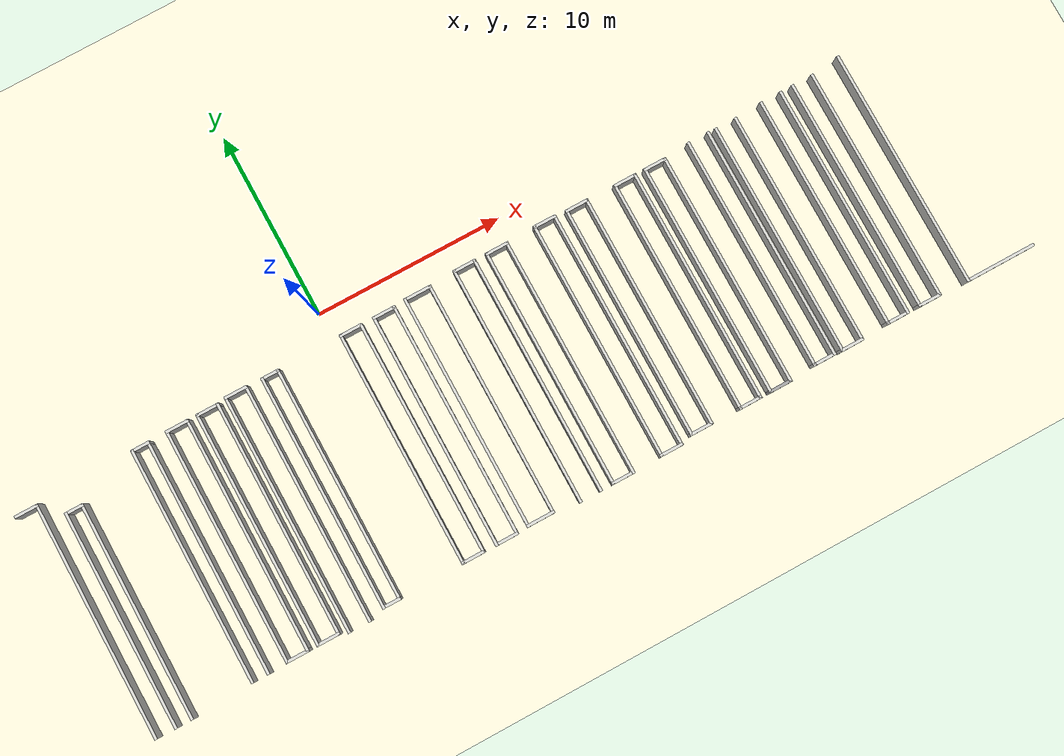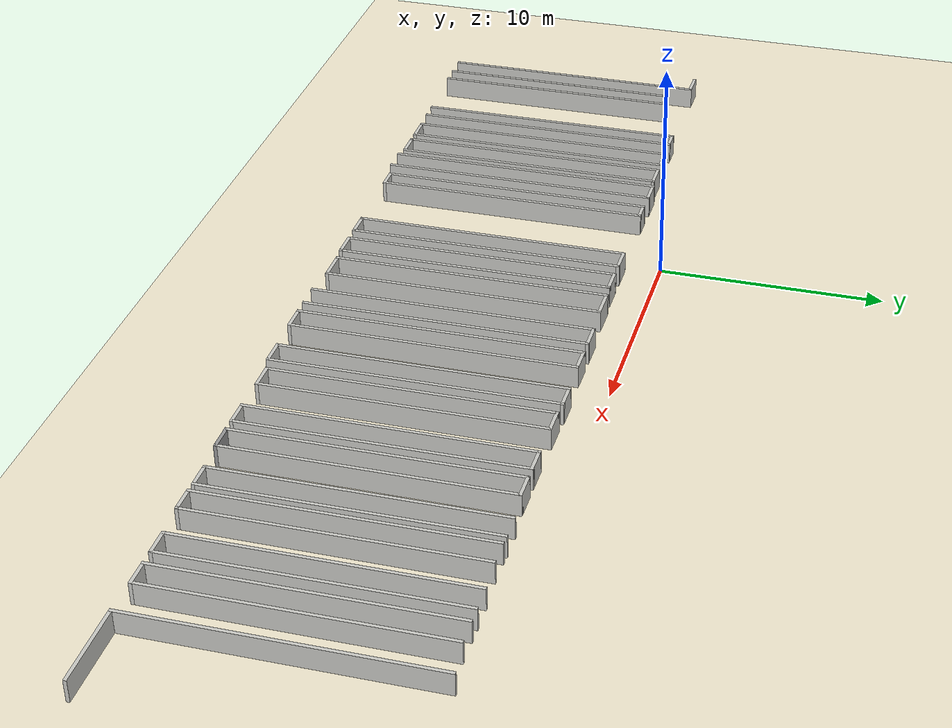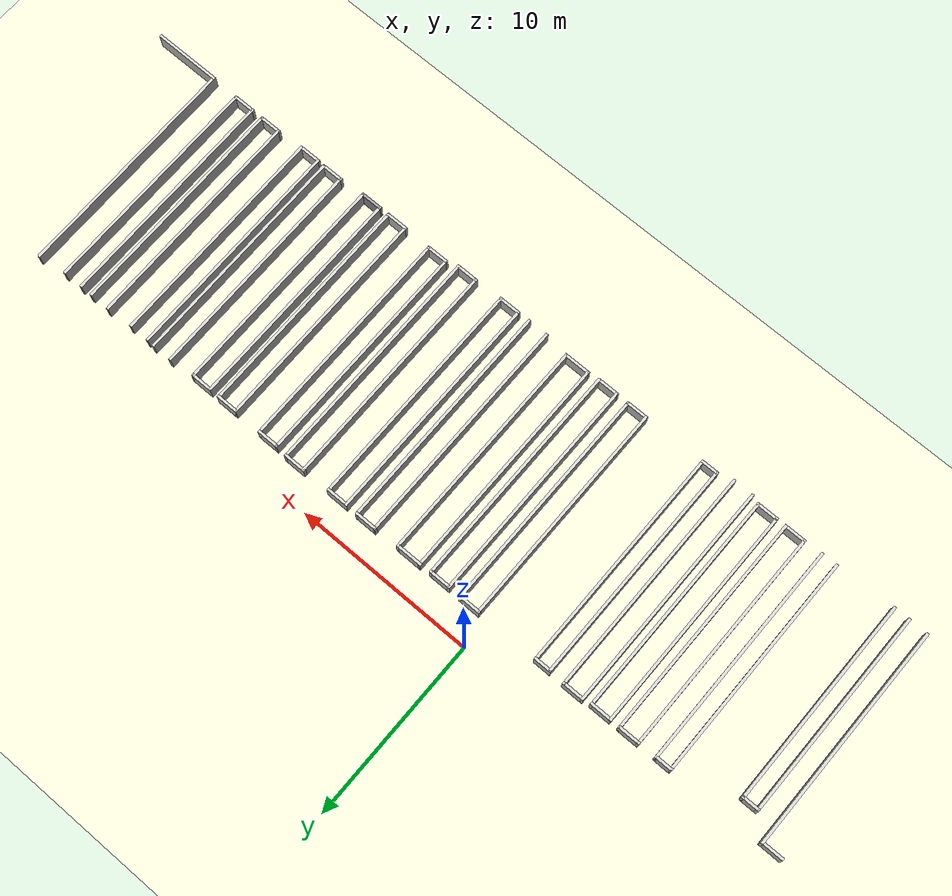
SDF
<sdf version="1.7">
 <world name="default">
  <model name="ground_plane">
   <static>1</static>
   <link name="link">
    <collision name="collision">
     <geometry><plane><normal>0 0 1</normal><size>100 100</size></plane></geometry>
     <surface><friction><ode><mu>100</mu><mu2>50</mu2></ode></friction></surface>
    </collision>
    <visual name="visual">
     <cast_shadows>0</cast_shadows>
     <geometry><plane><normal>0 0 1</normal><size>100 100</size></plane></geometry>
     <material>
      <ambient>0.85 0.82 0.72 1</ambient>
      <diffuse>0.95 0.92 0.82 1</diffuse>
      <specular>0.05 0.05 0.05 1</specular>
     </material>
    </visual>
   </link>
  </model>
  <model name="warehouse">
   <pose>0.004046 2.00696 0 0 -0 0</pose>
   <link name="Wall_68">
    <collision name="Wall_68_Collision">
     <geometry><box><size>12.75 0.15 1</size></box></geometry>
     <pose>0 0 0.5 0 -0 0</pose>
    </collision>
    <visual name="Wall_68_Visual">
     <pose>0 0 0.5 0 -0 0</pose>
     <geometry><box><size>12.75 0.15 1</size></box></geometry>
     <material>
      <script><uri>file://media/materials/scripts/gazebo.material</uri><name>Gazebo/CeilingTiled</name></script>
      <ambient>1 1 1 1</ambient>
     </material>
     <meta><layer>0</layer></meta>
    </visual>
    <pose>28.328 -9.4365 0 0 -0 -1.5708</pose>
   </link>
   <link name="Wall_69">
    <collision name="Wall_69_Collision">
     <geometry><box><size>3.75 0.15 1</size></box></geometry>
     <pose>0 0 0.5 0 -0 0</pose>
    </collision>
    <visual name="Wall_69_Visual">
     <pose>0 0 0.5 0 -0 0</pose>
     <geometry><box><size>3.75 0.15 1</size></box></geometry>
     <material>
      <script><uri>file://media/materials/scripts/gazebo.material</uri><name>Gazebo/CeilingTiled</name></script>
      <ambient>1 1 1 1</ambient>
     </material>
     <meta><layer>0</layer></meta>
    </visual>
    <pose>30.128 -15.7365 0 0 -0 0</pose>
   </link>
   <link name="Wall_704">
    <collision name="Wall_704_Collision">
     <geometry><box><size>1 0.15 1</size></box></geometry>
     <pose>0 0 0.5 0 -0 0</pose>
    </collision>
    <visual name="Wall_704_Visual">
     <pose>0 0 0.5 0 -0 0</pose>
     <geometry><box><size>1 0.15 1</size></box></geometry>
     <material>
      <script><uri>file://media/materials/scripts/gazebo.material</uri><name>Gazebo/CeilingTiled</name></script>
      <ambient>1 1 1 1</ambient>
     </material>
     <meta><layer>0</layer></meta>
    </visual>
    <pose>-10.4 -3.7525 0 0 -0 0</pose>
   </link>
   <link name="Wall_705">
    <collision name="Wall_705_Collision">
     <geometry><box><size>12.5 0.15 1</size></box></geometry>
     <pose>0 0 0.5 0 -0 0</pose>
    </collision>
    <visual name="Wall_705_Visual">
     <pose>0 0 0.5 0 -0 0</pose>
     <geometry><box><size>12.5 0.15 1</size></box></geometry>
     <material>
      <script><uri>file://media/materials/scripts/gazebo.material</uri><name>Gazebo/CeilingTiled</name></script>
      <ambient>1 1 1 1</ambient>
     </material>
     <meta><layer>0</layer></meta>
    </visual>
    <pose>-9.97504 -9.9275 0 0 -0 -1.5708</pose>
   </link>
   <link name="Wall_707">
    <collision name="Wall_707_Collision">
     <geometry><box><size>12.5 0.15 1</size></box></geometry>
     <pose>0 0 0.5 0 -0 0</pose>
    </collision>
    <visual name="Wall_707_Visual">
     <pose>0 0 0.5 0 -0 0</pose>
     <geometry><box><size>12.5 0.15 1</size></box></geometry>
     <material>
      <script><uri>file://media/materials/scripts/gazebo.material</uri><name>Gazebo/CeilingTiled</name></script>
      <ambient>1 1 1 1</ambient>
     </material>
     <meta><layer>0</layer></meta>
    </visual>
    <pose>-10.825 -9.9275 0 0 -0 1.5708</pose>
   </link>
   <link name="Wall_709">
    <collision name="Wall_709_Collision">
     <geometry><box><size>1.25 0.15 1</size></box></geometry>
     <pose>0 0 0.5 0 -0 0</pose>
    </collision>
    <visual name="Wall_709_Visual">
     <pose>0 0 0.5 0 -0 0</pose>
     <geometry><box><size>1.25 0.15 1</size></box></geometry>
     <material>
      <script><uri>file://media/materials/scripts/gazebo.material</uri><name>Gazebo/CeilingTiled</name></script>
      <ambient>1 1 1 1</ambient>
     </material>
     <meta><layer>0</layer></meta>
    </visual>
    <pose>-8.40704 -3.7195 0 0 -0 0</pose>
   </link>
   <link name="Wall_710">
    <collision name="Wall_710_Collision">
     <geometry><box><size>12.5 0.15 1</size></box></geometry>
     <pose>0 0 0.5 0 -0 0</pose>
    </collision>
    <visual name="Wall_710_Visual">
     <pose>0 0 0.5 0 -0 0</pose>
     <geometry><box><size>12.5 0.15 1</size></box></geometry>
     <material>
      <script><uri>file://media/materials/scripts/gazebo.material</uri><name>Gazebo/CeilingTiled</name></script>
      <ambient>1 1 1 1</ambient>
     </material>
     <meta><layer>0</layer></meta>
    </visual>
    <pose>-7.85704 -9.8945 0 0 -0 -1.5708</pose>
   </link>
   <link name="Wall_711">
    <collision name="Wall_711_Collision">
     <geometry><box><size>1.25 0.15 1</size></box></geometry>
     <pose>0 0 0.5 0 -0 0</pose>
    </collision>
    <visual name="Wall_711_Visual">
     <pose>0 0 0.5 0 -0 0</pose>
     <geometry><box><size>1.25 0.15 1</size></box></geometry>
     <material>
      <script><uri>file://media/materials/scripts/gazebo.material</uri><name>Gazebo/CeilingTiled</name></script>
      <ambient>1 1 1 1</ambient>
     </material>
     <meta><layer>0</layer></meta>
    </visual>
    <pose>-8.40704 -16.0695 0 0 -0 3.14159</pose>
   </link>
   <link name="Wall_712">
    <collision name="Wall_712_Collision">
     <geometry><box><size>12.5 0.15 1</size></box></geometry>
     <pose>0 0 0.5 0 -0 0</pose>
    </collision>
    <visual name="Wall_712_Visual">
     <pose>0 0 0.5 0 -0 0</pose>
     <geometry><box><size>12.5 0.15 1</size></box></geometry>
     <material>
      <script><uri>file://media/materials/scripts/gazebo.material</uri><name>Gazebo/CeilingTiled</name></script>
      <ambient>1 1 1 1</ambient>
     </material>
     <meta><layer>0</layer></meta>
    </visual>
    <pose>-8.95704 -9.8945 0 0 -0 1.5708</pose>
   </link>
   <link name="Wall_714">
    <collision name="Wall_714_Collision">
     <geometry><box><size>12.5 0.15 1</size></box></geometry>
     <pose>0 0 0.5 0 -0 0</pose>
    </collision>
    <visual name="Wall_714_Visual">
     <pose>0 0 0.5 0 -0 0</pose>
     <geometry><box><size>12.5 0.15 1</size></box></geometry>
     <material>
      <script><uri>file://media/materials/scripts/gazebo.material</uri><name>Gazebo/CeilingTiled</name></script>
      <ambient>1 1 1 1</ambient>
     </material>
     <meta><layer>0</layer></meta>
    </visual>
    <pose>-7.31904 -9.8945 0 0 -0 -1.5708</pose>
   </link>
   <link name="Wall_715">
    <collision name="Wall_715_Collision">
     <geometry><box><size>1.25 0.15 1</size></box></geometry>
     <pose>0 0 0.5 0 -0 0</pose>
    </collision>
    <visual name="Wall_715_Visual">
     <pose>0 0 0.5 0 -0 0</pose>
     <geometry><box><size>1.25 0.15 1</size></box></geometry>
     <material>
      <script><uri>file://media/materials/scripts/gazebo.material</uri><name>Gazebo/CeilingTiled</name></script>
      <ambient>1 1 1 1</ambient>
     </material>
     <meta><layer>0</layer></meta>
    </visual>
    <pose>-6.76904 -16.0695 0 0 -0 0</pose>
   </link>
   <link name="Wall_716">
    <collision name="Wall_716_Collision">
     <geometry><box><size>12.5 0.15 1</size></box></geometry>
     <pose>0 0 0.5 0 -0 0</pose>
    </collision>
    <visual name="Wall_716_Visual">
     <pose>0 0 0.5 0 -0 0</pose>
     <geometry><box><size>12.5 0.15 1</size></box></geometry>
     <material>
      <script><uri>file://media/materials/scripts/gazebo.material</uri><name>Gazebo/CeilingTiled</name></script>
      <ambient>1 1 1 1</ambient>
     </material>
     <meta><layer>0</layer></meta>
    </visual>
    <pose>-6.21904 -9.8945 0 0 -0 1.5708</pose>
   </link>
   <link name="Wall_717">
    <collision name="Wall_717_Collision">
     <geometry><box><size>1.25 0.15 1</size></box></geometry>
     <pose>0 0 0.5 0 -0 0</pose>
    </collision>
    <visual name="Wall_717_Visual">
     <pose>0 0 0.5 0 -0 0</pose>
     <geometry><box><size>1.25 0.15 1</size></box></geometry>
     <material>
      <script><uri>file://media/materials/scripts/gazebo.material</uri><name>Gazebo/CeilingTiled</name></script>
      <ambient>1 1 1 1</ambient>
     </material>
     <meta><layer>0</layer></meta>
    </visual>
    <pose>-6.76904 -3.7195 0 0 -0 3.14159</pose>
   </link>
   <link name="Wall_719">
    <collision name="Wall_719_Collision">
     <geometry><box><size>1.25 0.15 1</size></box></geometry>
     <pose>0 0 0.5 0 -0 0</pose>
    </collision>
    <visual name="Wall_719_Visual">
     <pose>0 0 0.5 0 -0 0</pose>
     <geometry><box><size>1.25 0.15 1</size></box></geometry>
     <material>
      <script><uri>file://media/materials/scripts/gazebo.material</uri><name>Gazebo/CeilingTiled</name></script>
      <ambient>1 1 1 1</ambient>
     </material>
     <meta><layer>0</layer></meta>
    </visual>
    <pose>-5.19704 -3.6215 0 0 -0 0</pose>
   </link>
   <link name="Wall_720">
    <collision name="Wall_720_Collision">
     <geometry><box><size>12.75 0.15 1</size></box></geometry>
     <pose>0 0 0.5 0 -0 0</pose>
    </collision>
    <visual name="Wall_720_Visual">
     <pose>0 0 0.5 0 -0 0</pose>
     <geometry><box><size>12.75 0.15 1</size></box></geometry>
     <material>
      <script><uri>file://media/materials/scripts/gazebo.material</uri><name>Gazebo/CeilingTiled</name></script>
      <ambient>1 1 1 1</ambient>
     </material>
     <meta><layer>0</layer></meta>
    </visual>
    <pose>-4.64704 -9.9215 0 0 -0 -1.5708</pose>
   </link>
   <link name="Wall_722">
    <collision name="Wall_722_Collision">
     <geometry><box><size>12.75 0.15 1</size></box></geometry>
     <pose>0 0 0.5 0 -0 0</pose>
    </collision>
    <visual name="Wall_722_Visual">
     <pose>0 0 0.5 0 -0 0</pose>
     <geometry><box><size>12.75 0.15 1</size></box></geometry>
     <material>
      <script><uri>file://media/materials/scripts/gazebo.material</uri><name>Gazebo/CeilingTiled</name></script>
      <ambient>1 1 1 1</ambient>
     </material>
     <meta><layer>0</layer></meta>
    </visual>
    <pose>-5.74704 -9.9215 0 0 -0 1.5708</pose>
   </link>
   <link name="Wall_724">
    <collision name="Wall_724_Collision">
     <geometry><box><size>1 0.15 1</size></box></geometry>
     <pose>0 0 0.5 0 -0 0</pose>
    </collision>
    <visual name="Wall_724_Visual">
     <pose>0 0 0.5 0 -0 0</pose>
     <geometry><box><size>1 0.15 1</size></box></geometry>
     <material>
      <script><uri>file://media/materials/scripts/gazebo.material</uri><name>Gazebo/CeilingTiled</name></script>
      <ambient>1 1 1 1</ambient>
     </material>
     <meta><layer>0</layer></meta>
    </visual>
    <pose>-3.35604 -3.6535 0 0 -0 0</pose>
   </link>
   <link name="Wall_725">
    <collision name="Wall_725_Collision">
     <geometry><box><size>12.5 0.15 1</size></box></geometry>
     <pose>0 0 0.5 0 -0 0</pose>
    </collision>
    <visual name="Wall_725_Visual">
     <pose>0 0 0.5 0 -0 0</pose>
     <geometry><box><size>12.5 0.15 1</size></box></geometry>
     <material>
      <script><uri>file://media/materials/scripts/gazebo.material</uri><name>Gazebo/CeilingTiled</name></script>
      <ambient>1 1 1 1</ambient>
     </material>
     <meta><layer>0</layer></meta>
    </visual>
    <pose>-2.93104 -9.8285 0 0 -0 -1.5708</pose>
   </link>
   <link name="Wall_726">
    <collision name="Wall_726_Collision">
     <geometry><box><size>1 0.15 1</size></box></geometry>
     <pose>0 0 0.5 0 -0 0</pose>
    </collision>
    <visual name="Wall_726_Visual">
     <pose>0 0 0.5 0 -0 0</pose>
     <geometry><box><size>1 0.15 1</size></box></geometry>
     <material>
      <script><uri>file://media/materials/scripts/gazebo.material</uri><name>Gazebo/CeilingTiled</name></script>
      <ambient>1 1 1 1</ambient>
     </material>
     <meta><layer>0</layer></meta>
    </visual>
    <pose>-3.35604 -16.0035 0 0 -0 3.14159</pose>
   </link>
   <link name="Wall_727">
    <collision name="Wall_727_Collision">
     <geometry><box><size>12.5 0.15 1</size></box></geometry>
     <pose>0 0 0.5 0 -0 0</pose>
    </collision>
    <visual name="Wall_727_Visual">
     <pose>0 0 0.5 0 -0 0</pose>
     <geometry><box><size>12.5 0.15 1</size></box></geometry>
     <material>
      <script><uri>file://media/materials/scripts/gazebo.material</uri><name>Gazebo/CeilingTiled</name></script>
      <ambient>1 1 1 1</ambient>
     </material>
     <meta><layer>0</layer></meta>
    </visual>
    <pose>-3.78104 -9.8285 0 0 -0 1.5708</pose>
   </link>
   <link name="Wall_729">
    <collision name="Wall_729_Collision">
     <geometry><box><size>1.25 0.15 1</size></box></geometry>
     <pose>0 0 0.5 0 -0 0</pose>
    </collision>
    <visual name="Wall_729_Visual">
     <pose>0 0 0.5 0 -0 0</pose>
     <geometry><box><size>1.25 0.15 1</size></box></geometry>
     <material>
      <script><uri>file://media/materials/scripts/gazebo.material</uri><name>Gazebo/CeilingTiled</name></script>
      <ambient>1 1 1 1</ambient>
     </material>
     <meta><layer>0</layer></meta>
    </visual>
    <pose>-16.533 -3.8835 0 0 -0 0</pose>
   </link>
   <link name="Wall_730">
    <collision name="Wall_730_Collision">
     <geometry><box><size>12.5 0.15 1</size></box></geometry>
     <pose>0 0 0.5 0 -0 0</pose>
    </collision>
    <visual name="Wall_730_Visual">
     <pose>0 0 0.5 0 -0 0</pose>
     <geometry><box><size>12.5 0.15 1</size></box></geometry>
     <material>
      <script><uri>file://media/materials/scripts/gazebo.material</uri><name>Gazebo/CeilingTiled</name></script>
      <ambient>1 1 1 1</ambient>
     </material>
     <meta><layer>0</layer></meta>
    </visual>
    <pose>-15.983 -10.0585 0 0 -0 -1.5708</pose>
   </link>
   <link name="Wall_737">
    <collision name="Wall_737_Collision">
     <geometry><box><size>11.5 0.15 1</size></box></geometry>
     <pose>0 0 0.5 0 -0 0</pose>
    </collision>
    <visual name="Wall_737_Visual">
     <pose>0 0 0.5 0 -0 0</pose>
     <geometry><box><size>11.5 0.15 1</size></box></geometry>
     <material>
      <script><uri>file://media/materials/scripts/gazebo.material</uri><name>Gazebo/CeilingTiled</name></script>
      <ambient>1 1 1 1</ambient>
     </material>
     <meta><layer>0</layer></meta>
    </visual>
    <pose>-14.088 -10.5715 0 0 -0 -1.5708</pose>
   </link>
   <link name="Wall_739">
    <collision name="Wall_739_Collision">
     <geometry><box><size>11.5 0.15 1</size></box></geometry>
     <pose>0 0 0.5 0 -0 0</pose>
    </collision>
    <visual name="Wall_739_Visual">
     <pose>0 0 0.5 0 -0 0</pose>
     <geometry><box><size>11.5 0.15 1</size></box></geometry>
     <material>
      <script><uri>file://media/materials/scripts/gazebo.material</uri><name>Gazebo/CeilingTiled</name></script>
      <ambient>1 1 1 1</ambient>
     </material>
     <meta><layer>0</layer></meta>
    </visual>
    <pose>-14.938 -10.5715 0 0 -0 1.5708</pose>
   </link>
   <link name="Wall_740">
    <collision name="Wall_740_Collision">
     <geometry><box><size>1 0.15 1</size></box></geometry>
     <pose>0 0 0.5 0 -0 0</pose>
    </collision>
    <visual name="Wall_740_Visual">
     <pose>0 0 0.5 0 -0 0</pose>
     <geometry><box><size>1 0.15 1</size></box></geometry>
     <material>
      <script><uri>file://media/materials/scripts/gazebo.material</uri><name>Gazebo/CeilingTiled</name></script>
      <ambient>1 1 1 1</ambient>
     </material>
     <meta><layer>0</layer></meta>
    </visual>
    <pose>-14.513 -4.8965 0 0 -0 0</pose>
   </link>
   <link name="Wall_755">
    <collision name="Wall_755_Collision">
     <geometry><box><size>12.5 0.15 1</size></box></geometry>
     <pose>0 0 0.5 0 -0 0</pose>
    </collision>
    <visual name="Wall_755_Visual">
     <pose>0 0 0.5 0 -0 0</pose>
     <geometry><box><size>12.5 0.15 1</size></box></geometry>
     <material>
      <script><uri>file://media/materials/scripts/gazebo.material</uri><name>Gazebo/CeilingTiled</name></script>
      <ambient>1 1 1 1</ambient>
     </material>
     <meta><layer>0</layer></meta>
    </visual>
    <pose>0.498962 -9.7885 0 0 -0 -1.5708</pose>
   </link>
   <link name="Wall_756">
    <collision name="Wall_756_Collision">
     <geometry><box><size>1.25 0.15 1</size></box></geometry>
     <pose>0 0 0.5 0 -0 0</pose>
    </collision>
    <visual name="Wall_756_Visual">
     <pose>0 0 0.5 0 -0 0</pose>
     <geometry><box><size>1.25 0.15 1</size></box></geometry>
     <material>
      <script><uri>file://media/materials/scripts/gazebo.material</uri><name>Gazebo/CeilingTiled</name></script>
      <ambient>1 1 1 1</ambient>
     </material>
     <meta><layer>0</layer></meta>
    </visual>
    <pose>1.04896 -15.9635 0 0 -0 0</pose>
   </link>
   <link name="Wall_757">
    <collision name="Wall_757_Collision">
     <geometry><box><size>12.5 0.15 1</size></box></geometry>
     <pose>0 0 0.5 0 -0 0</pose>
    </collision>
    <visual name="Wall_757_Visual">
     <pose>0 0 0.5 0 -0 0</pose>
     <geometry><box><size>12.5 0.15 1</size></box></geometry>
     <material>
      <script><uri>file://media/materials/scripts/gazebo.material</uri><name>Gazebo/CeilingTiled</name></script>
      <ambient>1 1 1 1</ambient>
     </material>
     <meta><layer>0</layer></meta>
    </visual>
    <pose>1.59896 -9.7885 0 0 -0 1.5708</pose>
   </link>
   <link name="Wall_758">
    <collision name="Wall_758_Collision">
     <geometry><box><size>1.25 0.15 1</size></box></geometry>
     <pose>0 0 0.5 0 -0 0</pose>
    </collision>
    <visual name="Wall_758_Visual">
     <pose>0 0 0.5 0 -0 0</pose>
     <geometry><box><size>1.25 0.15 1</size></box></geometry>
     <material>
      <script><uri>file://media/materials/scripts/gazebo.material</uri><name>Gazebo/CeilingTiled</name></script>
      <ambient>1 1 1 1</ambient>
     </material>
     <meta><layer>0</layer></meta>
    </visual>
    <pose>1.04896 -3.6135 0 0 -0 3.14159</pose>
   </link>
   <link name="Wall_784">
    <collision name="Wall_784_Collision">
     <geometry><box><size>1.25 0.15 1</size></box></geometry>
     <pose>0 0 0.5 0 -0 0</pose>
    </collision>
    <visual name="Wall_784_Visual">
     <pose>0 0 0.5 0 -0 0</pose>
     <geometry><box><size>1.25 0.15 1</size></box></geometry>
     <material>
      <script><uri>file://media/materials/scripts/gazebo.material</uri><name>Gazebo/CeilingTiled</name></script>
      <ambient>1 1 1 1</ambient>
     </material>
     <meta><layer>0</layer></meta>
    </visual>
    <pose>2.85296 -3.6175 0 0 -0 0</pose>
   </link>
   <link name="Wall_785">
    <collision name="Wall_785_Collision">
     <geometry><box><size>12.5 0.15 1</size></box></geometry>
     <pose>0 0 0.5 0 -0 0</pose>
    </collision>
    <visual name="Wall_785_Visual">
     <pose>0 0 0.5 0 -0 0</pose>
     <geometry><box><size>12.5 0.15 1</size></box></geometry>
     <material>
      <script><uri>file://media/materials/scripts/gazebo.material</uri><name>Gazebo/CeilingTiled</name></script>
      <ambient>1 1 1 1</ambient>
     </material>
     <meta><layer>0</layer></meta>
    </visual>
    <pose>3.40296 -9.7925 0 0 -0 -1.5708</pose>
   </link>
   <link name="Wall_786">
    <collision name="Wall_786_Collision">
     <geometry><box><size>1.25 0.15 1</size></box></geometry>
     <pose>0 0 0.5 0 -0 0</pose>
    </collision>
    <visual name="Wall_786_Visual">
     <pose>0 0 0.5 0 -0 0</pose>
     <geometry><box><size>1.25 0.15 1</size></box></geometry>
     <material>
      <script><uri>file://media/materials/scripts/gazebo.material</uri><name>Gazebo/CeilingTiled</name></script>
      <ambient>1 1 1 1</ambient>
     </material>
     <meta><layer>0</layer></meta>
    </visual>
    <pose>2.85296 -15.9675 0 0 -0 3.14159</pose>
   </link>
   <link name="Wall_787">
    <collision name="Wall_787_Collision">
     <geometry><box><size>12.5 0.15 1</size></box></geometry>
     <pose>0 0 0.5 0 -0 0</pose>
    </collision>
    <visual name="Wall_787_Visual">
     <pose>0 0 0.5 0 -0 0</pose>
     <geometry><box><size>12.5 0.15 1</size></box></geometry>
     <material>
      <script><uri>file://media/materials/scripts/gazebo.material</uri><name>Gazebo/CeilingTiled</name></script>
      <ambient>1 1 1 1</ambient>
     </material>
     <meta><layer>0</layer></meta>
    </visual>
    <pose>2.30296 -9.7925 0 0 -0 1.5708</pose>
   </link>
   <link name="Wall_793">
    <collision name="Wall_793_Collision">
     <geometry><box><size>1.5 0.15 1</size></box></geometry>
     <pose>0 0 0.5 0 -0 0</pose>
    </collision>
    <visual name="Wall_793_Visual">
     <pose>0 0 0.5 0 -0 0</pose>
     <geometry><box><size>1.5 0.15 1</size></box></geometry>
     <material>
      <script><uri>file://media/materials/scripts/gazebo.material</uri><name>Gazebo/CeilingTiled</name></script>
      <ambient>1 1 1 1</ambient>
     </material>
     <meta><layer>0</layer></meta>
    </visual>
    <pose>4.71396 -3.5565 0 0 -0 0</pose>
   </link>
   <link name="Wall_794">
    <collision name="Wall_794_Collision">
     <geometry><box><size>12.5 0.15 1</size></box></geometry>
     <pose>0 0 0.5 0 -0 0</pose>
    </collision>
    <visual name="Wall_794_Visual">
     <pose>0 0 0.5 0 -0 0</pose>
     <geometry><box><size>12.5 0.15 1</size></box></geometry>
     <material>
      <script><uri>file://media/materials/scripts/gazebo.material</uri><name>Gazebo/CeilingTiled</name></script>
      <ambient>1 1 1 1</ambient>
     </material>
     <meta><layer>0</layer></meta>
    </visual>
    <pose>5.38896 -9.7315 0 0 -0 -1.5708</pose>
   </link>
   <link name="Wall_800">
    <collision name="Wall_800_Collision">
     <geometry><box><size>1.5 0.15 1</size></box></geometry>
     <pose>0 0 0.5 0 -0 0</pose>
    </collision>
    <visual name="Wall_800_Visual">
     <pose>0 0 0.5 0 -0 0</pose>
     <geometry><box><size>1.5 0.15 1</size></box></geometry>
     <material>
      <script><uri>file://media/materials/scripts/gazebo.material</uri><name>Gazebo/CeilingTiled</name></script>
      <ambient>1 1 1 1</ambient>
     </material>
     <meta><layer>0</layer></meta>
    </visual>
    <pose>4.71396 -15.9065 0 0 -0 3.14159</pose>
   </link>
   <link name="Wall_801">
    <collision name="Wall_801_Collision">
     <geometry><box><size>12.5 0.15 1</size></box></geometry>
     <pose>0 0 0.5 0 -0 0</pose>
    </collision>
    <visual name="Wall_801_Visual">
     <pose>0 0 0.5 0 -0 0</pose>
     <geometry><box><size>12.5 0.15 1</size></box></geometry>
     <material>
      <script><uri>file://media/materials/scripts/gazebo.material</uri><name>Gazebo/CeilingTiled</name></script>
      <ambient>1 1 1 1</ambient>
     </material>
     <meta><layer>0</layer></meta>
    </visual>
    <pose>4.03896 -9.7315 0 0 -0 1.5708</pose>
   </link>
   <link name="Wall_803">
    <collision name="Wall_803_Collision">
     <geometry><box><size>12.75 0.15 1</size></box></geometry>
     <pose>0 0 0.5 0 -0 0</pose>
    </collision>
    <visual name="Wall_803_Visual">
     <pose>0 0 0.5 0 -0 0</pose>
     <geometry><box><size>12.75 0.15 1</size></box></geometry>
     <material>
      <script><uri>file://media/materials/scripts/gazebo.material</uri><name>Gazebo/CeilingTiled</name></script>
      <ambient>1 1 1 1</ambient>
     </material>
     <meta><layer>0</layer></meta>
    </visual>
    <pose>6.78296 -9.7735 0 0 -0 -1.5708</pose>
   </link>
   <link name="Wall_807">
    <collision name="Wall_807_Collision">
     <geometry><box><size>12.75 0.15 1</size></box></geometry>
     <pose>0 0 0.5 0 -0 0</pose>
    </collision>
    <visual name="Wall_807_Visual">
     <pose>0 0 0.5 0 -0 0</pose>
     <geometry><box><size>12.75 0.15 1</size></box></geometry>
     <material>
      <script><uri>file://media/materials/scripts/gazebo.material</uri><name>Gazebo/CeilingTiled</name></script>
      <ambient>1 1 1 1</ambient>
     </material>
     <meta><layer>0</layer></meta>
    </visual>
    <pose>7.88296 -9.7735 0 0 -0 1.5708</pose>
   </link>
   <link name="Wall_808">
    <collision name="Wall_808_Collision">
     <geometry><box><size>1.25 0.15 1</size></box></geometry>
     <pose>0 0 0.5 0 -0 0</pose>
    </collision>
    <visual name="Wall_808_Visual">
     <pose>0 0 0.5 0 -0 0</pose>
     <geometry><box><size>1.25 0.15 1</size></box></geometry>
     <material>
      <script><uri>file://media/materials/scripts/gazebo.material</uri><name>Gazebo/CeilingTiled</name></script>
      <ambient>1 1 1 1</ambient>
     </material>
     <meta><layer>0</layer></meta>
    </visual>
    <pose>7.33296 -3.4735 0 0 -0 3.14159</pose>
   </link>
   <link name="Wall_810">
    <collision name="Wall_810_Collision">
     <geometry><box><size>1.25 0.15 1</size></box></geometry>
     <pose>0 0 0.5 0 -0 0</pose>
    </collision>
    <visual name="Wall_810_Visual">
     <pose>0 0 0.5 0 -0 0</pose>
     <geometry><box><size>1.25 0.15 1</size></box></geometry>
     <material>
      <script><uri>file://media/materials/scripts/gazebo.material</uri><name>Gazebo/CeilingTiled</name></script>
      <ambient>1 1 1 1</ambient>
     </material>
     <meta><layer>0</layer></meta>
    </visual>
    <pose>9.10896 -3.4735 0 0 -0 0</pose>
   </link>
   <link name="Wall_811">
    <collision name="Wall_811_Collision">
     <geometry><box><size>12.75 0.15 1</size></box></geometry>
     <pose>0 0 0.5 0 -0 0</pose>
    </collision>
    <visual name="Wall_811_Visual">
     <pose>0 0 0.5 0 -0 0</pose>
     <geometry><box><size>12.75 0.15 1</size></box></geometry>
     <material>
      <script><uri>file://media/materials/scripts/gazebo.material</uri><name>Gazebo/CeilingTiled</name></script>
      <ambient>1 1 1 1</ambient>
     </material>
     <meta><layer>0</layer></meta>
    </visual>
    <pose>9.65896 -9.7735 0 0 -0 -1.5708</pose>
   </link>
   <link name="Wall_812">
    <collision name="Wall_812_Collision">
     <geometry><box><size>1.25 0.15 1</size></box></geometry>
     <pose>0 0 0.5 0 -0 0</pose>
    </collision>
    <visual name="Wall_812_Visual">
     <pose>0 0 0.5 0 -0 0</pose>
     <geometry><box><size>1.25 0.15 1</size></box></geometry>
     <material>
      <script><uri>file://media/materials/scripts/gazebo.material</uri><name>Gazebo/CeilingTiled</name></script>
      <ambient>1 1 1 1</ambient>
     </material>
     <meta><layer>0</layer></meta>
    </visual>
    <pose>9.10896 -16.0735 0 0 -0 3.14159</pose>
   </link>
   <link name="Wall_813">
    <collision name="Wall_813_Collision">
     <geometry><box><size>12.75 0.15 1</size></box></geometry>
     <pose>0 0 0.5 0 -0 0</pose>
    </collision>
    <visual name="Wall_813_Visual">
     <pose>0 0 0.5 0 -0 0</pose>
     <geometry><box><size>12.75 0.15 1</size></box></geometry>
     <material>
      <script><uri>file://media/materials/scripts/gazebo.material</uri><name>Gazebo/CeilingTiled</name></script>
      <ambient>1 1 1 1</ambient>
     </material>
     <meta><layer>0</layer></meta>
    </visual>
    <pose>8.55896 -9.7735 0 0 -0 1.5708</pose>
   </link>
   <link name="Wall_815">
    <collision name="Wall_815_Collision">
     <geometry><box><size>12.75 0.15 1</size></box></geometry>
     <pose>0 0 0.5 0 -0 0</pose>
    </collision>
    <visual name="Wall_815_Visual">
     <pose>0 0 0.5 0 -0 0</pose>
     <geometry><box><size>12.75 0.15 1</size></box></geometry>
     <material>
      <script><uri>file://media/materials/scripts/gazebo.material</uri><name>Gazebo/CeilingTiled</name></script>
      <ambient>1 1 1 1</ambient>
     </material>
     <meta><layer>0</layer></meta>
    </visual>
    <pose>11.224 -9.7155 0 0 -0 -1.5708</pose>
   </link>
   <link name="Wall_816">
    <collision name="Wall_816_Collision">
     <geometry><box><size>1.25 0.15 1</size></box></geometry>
     <pose>0 0 0.5 0 -0 0</pose>
    </collision>
    <visual name="Wall_816_Visual">
     <pose>0 0 0.5 0 -0 0</pose>
     <geometry><box><size>1.25 0.15 1</size></box></geometry>
     <material>
      <script><uri>file://media/materials/scripts/gazebo.material</uri><name>Gazebo/CeilingTiled</name></script>
      <ambient>1 1 1 1</ambient>
     </material>
     <meta><layer>0</layer></meta>
    </visual>
    <pose>11.774 -16.0155 0 0 -0 0</pose>
   </link>
   <link name="Wall_817">
    <collision name="Wall_817_Collision">
     <geometry><box><size>12.75 0.15 1</size></box></geometry>
     <pose>0 0 0.5 0 -0 0</pose>
    </collision>
    <visual name="Wall_817_Visual">
     <pose>0 0 0.5 0 -0 0</pose>
     <geometry><box><size>12.75 0.15 1</size></box></geometry>
     <material>
      <script><uri>file://media/materials/scripts/gazebo.material</uri><name>Gazebo/CeilingTiled</name></script>
      <ambient>1 1 1 1</ambient>
     </material>
     <meta><layer>0</layer></meta>
    </visual>
    <pose>12.324 -9.7155 0 0 -0 1.5708</pose>
   </link>
   <link name="Wall_818">
    <collision name="Wall_818_Collision">
     <geometry><box><size>1.25 0.15 1</size></box></geometry>
     <pose>0 0 0.5 0 -0 0</pose>
    </collision>
    <visual name="Wall_818_Visual">
     <pose>0 0 0.5 0 -0 0</pose>
     <geometry><box><size>1.25 0.15 1</size></box></geometry>
     <material>
      <script><uri>file://media/materials/scripts/gazebo.material</uri><name>Gazebo/CeilingTiled</name></script>
      <ambient>1 1 1 1</ambient>
     </material>
     <meta><layer>0</layer></meta>
    </visual>
    <pose>11.774 -3.4155 0 0 -0 3.14159</pose>
   </link>
   <link name="Wall_820">
    <collision name="Wall_820_Collision">
     <geometry><box><size>1.25 0.15 1</size></box></geometry>
     <pose>0 0 0.5 0 -0 0</pose>
    </collision>
    <visual name="Wall_820_Visual">
     <pose>0 0 0.5 0 -0 0</pose>
     <geometry><box><size>1.25 0.15 1</size></box></geometry>
     <material>
      <script><uri>file://media/materials/scripts/gazebo.material</uri><name>Gazebo/CeilingTiled</name></script>
      <ambient>1 1 1 1</ambient>
     </material>
     <meta><layer>0</layer></meta>
    </visual>
    <pose>13.522 -3.4735 0 0 -0 0</pose>
   </link>
   <link name="Wall_821">
    <collision name="Wall_821_Collision">
     <geometry><box><size>12.5 0.15 1</size></box></geometry>
     <pose>0 0 0.5 0 -0 0</pose>
    </collision>
    <visual name="Wall_821_Visual">
     <pose>0 0 0.5 0 -0 0</pose>
     <geometry><box><size>12.5 0.15 1</size></box></geometry>
     <material>
      <script><uri>file://media/materials/scripts/gazebo.material</uri><name>Gazebo/CeilingTiled</name></script>
      <ambient>1 1 1 1</ambient>
     </material>
     <meta><layer>0</layer></meta>
    </visual>
    <pose>14.072 -9.6485 0 0 -0 -1.5708</pose>
   </link>
   <link name="Wall_822">
    <collision name="Wall_822_Collision">
     <geometry><box><size>1.25 0.15 1</size></box></geometry>
     <pose>0 0 0.5 0 -0 0</pose>
    </collision>
    <visual name="Wall_822_Visual">
     <pose>0 0 0.5 0 -0 0</pose>
     <geometry><box><size>1.25 0.15 1</size></box></geometry>
     <material>
      <script><uri>file://media/materials/scripts/gazebo.material</uri><name>Gazebo/CeilingTiled</name></script>
      <ambient>1 1 1 1</ambient>
     </material>
     <meta><layer>0</layer></meta>
    </visual>
    <pose>13.522 -15.8235 0 0 -0 3.14159</pose>
   </link>
   <link name="Wall_823">
    <collision name="Wall_823_Collision">
     <geometry><box><size>12.5 0.15 1</size></box></geometry>
     <pose>0 0 0.5 0 -0 0</pose>
    </collision>
    <visual name="Wall_823_Visual">
     <pose>0 0 0.5 0 -0 0</pose>
     <geometry><box><size>12.5 0.15 1</size></box></geometry>
     <material>
      <script><uri>file://media/materials/scripts/gazebo.material</uri><name>Gazebo/CeilingTiled</name></script>
      <ambient>1 1 1 1</ambient>
     </material>
     <meta><layer>0</layer></meta>
    </visual>
    <pose>12.972 -9.6485 0 0 -0 1.5708</pose>
   </link>
   <link name="Wall_825">
    <collision name="Wall_825_Collision">
     <geometry><box><size>1.25 0.15 1</size></box></geometry>
     <pose>0 0 0.5 0 -0 0</pose>
    </collision>
    <visual name="Wall_825_Visual">
     <pose>0 0 0.5 0 -0 0</pose>
     <geometry><box><size>1.25 0.15 1</size></box></geometry>
     <material>
      <script><uri>file://media/materials/scripts/gazebo.material</uri><name>Gazebo/CeilingTiled</name></script>
      <ambient>1 1 1 1</ambient>
     </material>
     <meta><layer>0</layer></meta>
    </visual>
    <pose>16.186 -3.5015 0 0 -0 0</pose>
   </link>
   <link name="Wall_826">
    <collision name="Wall_826_Collision">
     <geometry><box><size>12.5 0.15 1</size></box></geometry>
     <pose>0 0 0.5 0 -0 0</pose>
    </collision>
    <visual name="Wall_826_Visual">
     <pose>0 0 0.5 0 -0 0</pose>
     <geometry><box><size>12.5 0.15 1</size></box></geometry>
     <material>
      <script><uri>file://media/materials/scripts/gazebo.material</uri><name>Gazebo/CeilingTiled</name></script>
      <ambient>1 1 1 1</ambient>
     </material>
     <meta><layer>0</layer></meta>
    </visual>
    <pose>16.736 -9.6765 0 0 -0 -1.5708</pose>
   </link>
   <link name="Wall_827">
    <collision name="Wall_827_Collision">
     <geometry><box><size>1.25 0.15 1</size></box></geometry>
     <pose>0 0 0.5 0 -0 0</pose>
    </collision>
    <visual name="Wall_827_Visual">
     <pose>0 0 0.5 0 -0 0</pose>
     <geometry><box><size>1.25 0.15 1</size></box></geometry>
     <material>
      <script><uri>file://media/materials/scripts/gazebo.material</uri><name>Gazebo/CeilingTiled</name></script>
      <ambient>1 1 1 1</ambient>
     </material>
     <meta><layer>0</layer></meta>
    </visual>
    <pose>16.186 -15.8515 0 0 -0 3.14159</pose>
   </link>
   <link name="Wall_828">
    <collision name="Wall_828_Collision">
     <geometry><box><size>12.5 0.15 1</size></box></geometry>
     <pose>0 0 0.5 0 -0 0</pose>
    </collision>
    <visual name="Wall_828_Visual">
     <pose>0 0 0.5 0 -0 0</pose>
     <geometry><box><size>12.5 0.15 1</size></box></geometry>
     <material>
      <script><uri>file://media/materials/scripts/gazebo.material</uri><name>Gazebo/CeilingTiled</name></script>
      <ambient>1 1 1 1</ambient>
     </material>
     <meta><layer>0</layer></meta>
    </visual>
    <pose>15.636 -9.6765 0 0 -0 1.5708</pose>
   </link>
   <link name="Wall_830">
    <collision name="Wall_830_Collision">
     <geometry><box><size>1.25 0.15 1</size></box></geometry>
     <pose>0 0 0.5 0 -0 0</pose>
    </collision>
    <visual name="Wall_830_Visual">
     <pose>0 0 0.5 0 -0 0</pose>
     <geometry><box><size>1.25 0.15 1</size></box></geometry>
     <material>
      <script><uri>file://media/materials/scripts/gazebo.material</uri><name>Gazebo/CeilingTiled</name></script>
      <ambient>1 1 1 1</ambient>
     </material>
     <meta><layer>0</layer></meta>
    </visual>
    <pose>17.848 -3.5015 0 0 -0 0</pose>
   </link>
   <link name="Wall_831">
    <collision name="Wall_831_Collision">
     <geometry><box><size>12.5 0.15 1</size></box></geometry>
     <pose>0 0 0.5 0 -0 0</pose>
    </collision>
    <visual name="Wall_831_Visual">
     <pose>0 0 0.5 0 -0 0</pose>
     <geometry><box><size>12.5 0.15 1</size></box></geometry>
     <material>
      <script><uri>file://media/materials/scripts/gazebo.material</uri><name>Gazebo/CeilingTiled</name></script>
      <ambient>1 1 1 1</ambient>
     </material>
     <meta><layer>0</layer></meta>
    </visual>
    <pose>18.398 -9.6765 0 0 -0 -1.5708</pose>
   </link>
   <link name="Wall_832">
    <collision name="Wall_832_Collision">
     <geometry><box><size>1.25 0.15 1</size></box></geometry>
     <pose>0 0 0.5 0 -0 0</pose>
    </collision>
    <visual name="Wall_832_Visual">
     <pose>0 0 0.5 0 -0 0</pose>
     <geometry><box><size>1.25 0.15 1</size></box></geometry>
     <material>
      <script><uri>file://media/materials/scripts/gazebo.material</uri><name>Gazebo/Grey</name></script>
      <ambient>1 1 1 1</ambient>
     </material>
     <meta><layer>0</layer></meta>
    </visual>
    <pose>17.848 -15.8515 0 0 -0 3.14159</pose>
   </link>
   <link name="Wall_833">
    <collision name="Wall_833_Collision">
     <geometry><box><size>12.5 0.15 1</size></box></geometry>
     <pose>0 0 0.5 0 -0 0</pose>
    </collision>
    <visual name="Wall_833_Visual">
     <pose>0 0 0.5 0 -0 0</pose>
     <geometry><box><size>12.5 0.15 1</size></box></geometry>
     <material>
      <script><uri>file://media/materials/scripts/gazebo.material</uri><name>Gazebo/CeilingTiled</name></script>
      <ambient>1 1 1 1</ambient>
     </material>
     <meta><layer>0</layer></meta>
    </visual>
    <pose>17.298 -9.6765 0 0 -0 1.5708</pose>
   </link>
   <link name="Wall_836">
    <collision name="Wall_836_Collision">
     <geometry><box><size>12.5 0.15 1</size></box></geometry>
     <pose>0 0 0.5 0 -0 0</pose>
    </collision>
    <visual name="Wall_836_Visual">
     <pose>0 0 0.5 0 -0 0</pose>
     <geometry><box><size>12.5 0.15 1</size></box></geometry>
     <material>
      <script><uri>file://media/materials/scripts/gazebo.material</uri><name>Gazebo/CeilingTiled</name></script>
      <ambient>1 1 1 1</ambient>
     </material>
     <meta><layer>0</layer></meta>
    </visual>
    <pose>20.891 -9.5625 0 0 -0 -1.5708</pose>
   </link>
   <link name="Wall_837">
    <collision name="Wall_837_Collision">
     <geometry><box><size>1.25 0.15 1</size></box></geometry>
     <pose>0 0 0.5 0 -0 0</pose>
    </collision>
    <visual name="Wall_837_Visual">
     <pose>0 0 0.5 0 -0 0</pose>
     <geometry><box><size>1.25 0.15 1</size></box></geometry>
     <material>
      <script><uri>file://media/materials/scripts/gazebo.material</uri><name>Gazebo/CeilingTiled</name></script>
      <ambient>1 1 1 1</ambient>
     </material>
     <meta><layer>0</layer></meta>
    </visual>
    <pose>20.341 -15.7375 0 0 -0 3.14159</pose>
   </link>
   <link name="Wall_838">
    <collision name="Wall_838_Collision">
     <geometry><box><size>12.5 0.15 1</size></box></geometry>
     <pose>0 0 0.5 0 -0 0</pose>
    </collision>
    <visual name="Wall_838_Visual">
     <pose>0 0 0.5 0 -0 0</pose>
     <geometry><box><size>12.5 0.15 1</size></box></geometry>
     <material>
      <script><uri>file://media/materials/scripts/gazebo.material</uri><name>Gazebo/CeilingTiled</name></script>
      <ambient>1 1 1 1</ambient>
     </material>
     <meta><layer>0</layer></meta>
    </visual>
    <pose>19.791 -9.5625 0 0 -0 1.5708</pose>
   </link>
   <link name="Wall_841">
    <collision name="Wall_841_Collision">
     <geometry><box><size>12.5 0.15 1</size></box></geometry>
     <pose>0 0 0.5 0 -0 0</pose>
    </collision>
    <visual name="Wall_841_Visual">
     <pose>0 0 0.5 0 -0 0</pose>
     <geometry><box><size>12.5 0.15 1</size></box></geometry>
     <material>
      <script><uri>file://media/materials/scripts/gazebo.material</uri><name>Gazebo/CeilingTiled</name></script>
      <ambient>1 1 1 1</ambient>
     </material>
     <meta><layer>0</layer></meta>
    </visual>
    <pose>22.409 -9.5905 0 0 -0 -1.5708</pose>
   </link>
   <link name="Wall_846">
    <collision name="Wall_846_Collision">
     <geometry><box><size>1.25 0.15 1</size></box></geometry>
     <pose>0 0 0.5 0 -0 0</pose>
    </collision>
    <visual name="Wall_846_Visual">
     <pose>0 0 0.5 0 -0 0</pose>
     <geometry><box><size>1.25 0.15 1</size></box></geometry>
     <material>
      <script><uri>file://media/materials/scripts/gazebo.material</uri><name>Gazebo/CeilingTiled</name></script>
      <ambient>1 1 1 1</ambient>
     </material>
     <meta><layer>0</layer></meta>
    </visual>
    <pose>21.859 -15.7655 0 0 -0 3.14159</pose>
   </link>
   <link name="Wall_847">
    <collision name="Wall_847_Collision">
     <geometry><box><size>12.5 0.15 1</size></box></geometry>
     <pose>0 0 0.5 0 -0 0</pose>
    </collision>
    <visual name="Wall_847_Visual">
     <pose>0 0 0.5 0 -0 0</pose>
     <geometry><box><size>12.5 0.15 1</size></box></geometry>
     <material>
      <script><uri>file://media/materials/scripts/gazebo.material</uri><name>Gazebo/CeilingTiled</name></script>
      <ambient>1 1 1 1</ambient>
     </material>
     <meta><layer>0</layer></meta>
    </visual>
    <pose>21.309 -9.5905 0 0 -0 1.5708</pose>
   </link>
   <link name="Wall_850">
    <collision name="Wall_850_Collision">
     <geometry><box><size>12.5 0.15 1</size></box></geometry>
     <pose>0 0 0.5 0 -0 0</pose>
    </collision>
    <visual name="Wall_850_Visual">
     <pose>0 0 0.5 0 -0 0</pose>
     <geometry><box><size>12.5 0.15 1</size></box></geometry>
     <material>
      <script><uri>file://media/materials/scripts/gazebo.material</uri><name>Gazebo/CeilingTiled</name></script>
      <ambient>1 1 1 1</ambient>
     </material>
     <meta><layer>0</layer></meta>
    </visual>
    <pose>24.988 -9.5045 0 0 -0 -1.5708</pose>
   </link>
   <link name="Wall_851">
    <collision name="Wall_851_Collision">
     <geometry><box><size>1.25 0.15 1</size></box></geometry>
     <pose>0 0 0.5 0 -0 0</pose>
    </collision>
    <visual name="Wall_851_Visual">
     <pose>0 0 0.5 0 -0 0</pose>
     <geometry><box><size>1.25 0.15 1</size></box></geometry>
     <material>
      <script><uri>file://media/materials/scripts/gazebo.material</uri><name>Gazebo/CeilingTiled</name></script>
      <ambient>1 1 1 1</ambient>
     </material>
     <meta><layer>0</layer></meta>
    </visual>
    <pose>24.438 -15.6795 0 0 -0 3.14159</pose>
   </link>
   <link name="Wall_852">
    <collision name="Wall_852_Collision">
     <geometry><box><size>12.5 0.15 1</size></box></geometry>
     <pose>0 0 0.5 0 -0 0</pose>
    </collision>
    <visual name="Wall_852_Visual">
     <pose>0 0 0.5 0 -0 0</pose>
     <geometry><box><size>12.5 0.15 1</size></box></geometry>
     <material>
      <script><uri>file://media/materials/scripts/gazebo.material</uri><name>Gazebo/CeilingTiled</name></script>
      <ambient>1 1 1 1</ambient>
     </material>
     <meta><layer>0</layer></meta>
    </visual>
    <pose>23.888 -9.5045 0 0 -0 1.5708</pose>
   </link>
   <link name="Wall_855">
    <collision name="Wall_855_Collision">
     <geometry><box><size>12.5 0.15 1</size></box></geometry>
     <pose>0 0 0.5 0 -0 0</pose>
    </collision>
    <visual name="Wall_855_Visual">
     <pose>0 0 0.5 0 -0 0</pose>
     <geometry><box><size>12.5 0.15 1</size></box></geometry>
     <material>
      <script><uri>file://media/materials/scripts/gazebo.material</uri><name>Gazebo/CeilingTiled</name></script>
      <ambient>1 1 1 1</ambient>
     </material>
     <meta><layer>0</layer></meta>
    </visual>
    <pose>26.765 -9.5045 0 0 -0 -1.5708</pose>
   </link>
   <link name="Wall_856">
    <collision name="Wall_856_Collision">
     <geometry><box><size>1.25 0.15 1</size></box></geometry>
     <pose>0 0 0.5 0 -0 0</pose>
    </collision>
    <visual name="Wall_856_Visual">
     <pose>0 0 0.5 0 -0 0</pose>
     <geometry><box><size>1.25 0.15 1</size></box></geometry>
     <material>
      <script><uri>file://media/materials/scripts/gazebo.material</uri><name>Gazebo/CeilingTiled</name></script>
      <ambient>1 1 1 1</ambient>
     </material>
     <meta><layer>0</layer></meta>
    </visual>
    <pose>26.215 -15.6795 0 0 -0 3.14159</pose>
   </link>
   <link name="Wall_857">
    <collision name="Wall_857_Collision">
     <geometry><box><size>12.5 0.15 1</size></box></geometry>
     <pose>0 0 0.5 0 -0 0</pose>
    </collision>
    <visual name="Wall_857_Visual">
     <pose>0 0 0.5 0 -0 0</pose>
     <geometry><box><size>12.5 0.15 1</size></box></geometry>
     <material>
      <script><uri>file://media/materials/scripts/gazebo.material</uri><name>Gazebo/CeilingTiled</name></script>
      <ambient>1 1 1 1</ambient>
     </material>
     <meta><layer>0</layer></meta>
    </visual>
    <pose>25.665 -9.5045 0 0 -0 1.5708</pose>
   </link>
   <static>1</static>
  </model>
 </world>
</sdf>
